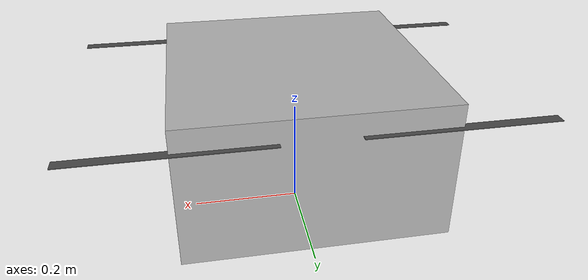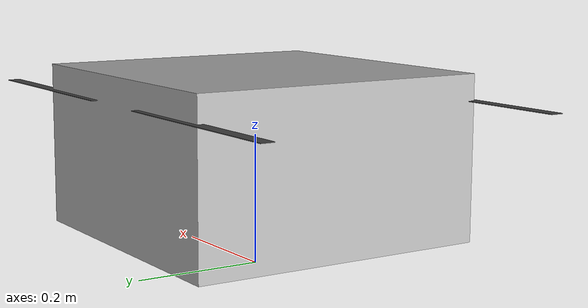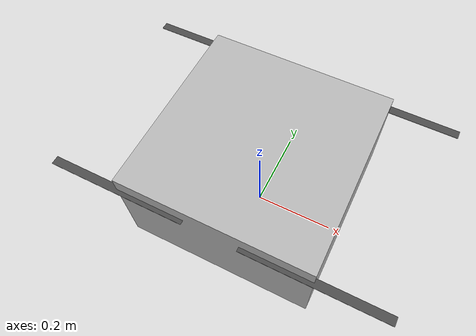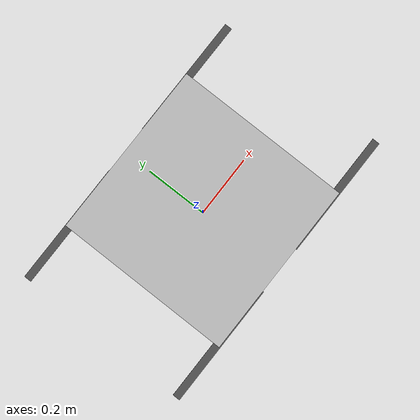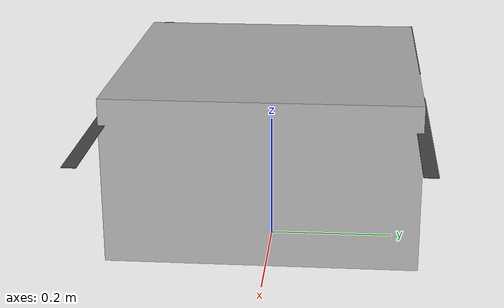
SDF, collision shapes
<?xml version='1.0'?>
<sdf version='1.5'>
  <model name='modified_m100_vision'>

    <include>
      <uri>model://modified_m100</uri>
    </include>

    <plugin name="vision_plugin" filename="libgazebo_vision_plugin.so">
        <robotNamespace></robotNamespace>
        <pubRate>30</pubRate>
        <randomWalk>1.0</randomWalk>
        <noiseDensity>5e-04</noiseDensity>
        <corellationTime>60.0</corellationTime>
    </plugin>
  </model>
</sdf>

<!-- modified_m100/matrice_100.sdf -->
<sdf version="1.5">

  <model name="modified_m100">

    <pose>0 0 0.2 0 0 0</pose>

    <self_collide>false</self_collide>

    <static>false</static>

    <link name="base_link">
      <pose frame=''>0 0 0 0 -0 0</pose>
      <inertial>
        <pose frame=''>0 0 0 0 -0 0</pose>
        <mass>2.0</mass>
        <inertia>
          <ixx>0.0216666666667</ixx>
          <ixy>0</ixy>
          <ixz>0</ixz>
          <iyy>0.0216666666667</iyy>
          <iyz>0</iyz>
          <izz>0.04</izz>
        </inertia>
      </inertial>

      <gravity>true</gravity>
      <self_collide>false</self_collide>
      <velocity_decay/>

      <visual name="base_link_visual">
        <geometry>
          <mesh>
            <scale>1 1 1</scale>
            <uri>model://matrice_100/meshes/Matrice_100.dae</uri>
          </mesh>
        </geometry>
      </visual>

      <collision name="base_link_collision">
      	<pose frame=''>0 0 -0.025 0 0 0</pose>
        <geometry>
          <box>
            <size>0.4596194077712559 0.4596194077712559 0.25</size>
          </box>
        </geometry>
        <surface>
          <contact>
            <ode>
              <min_depth>0.001</min_depth>
              <max_vel>0</max_vel>
            </ode>
          </contact>
          <friction>
            <ode/>
          </friction>
        </surface>
      </collision>

    </link>

    <link name='/imu_link'>
      <pose frame=''>0 0 0 0 -0 0</pose>
      <inertial>
        <pose frame=''>0 0 0 0 -0 0</pose>
        <mass>0.015</mass>
        <inertia>
          <ixx>1e-05</ixx>
          <ixy>0</ixy>
          <ixz>0</ixz>
          <iyy>1e-05</iyy>
          <iyz>0</iyz>
          <izz>1e-05</izz>
        </inertia>
      </inertial>
    </link>
    <joint name='/imu_joint' type='revolute'>
      <child>/imu_link</child>
      <parent>base_link</parent>
      <axis>
        <xyz>1 0 0</xyz>
        <limit>
          <lower>0</lower>
          <upper>0</upper>
          <effort>0</effort>
          <velocity>0</velocity>
        </limit>
        <dynamics>
          <spring_reference>0</spring_reference>
          <spring_stiffness>0</spring_stiffness>
        </dynamics>
        <use_parent_model_frame>1</use_parent_model_frame>
      </axis>
    </joint>

    <plugin name='rosbag' filename='libgazebo_multirotor_base_plugin.so'>
      <robotNamespace/>
      <linkName>base_link</linkName>
      <rotorVelocitySlowdownSim>10</rotorVelocitySlowdownSim>
    </plugin>

    <!--Rotor 0 -->
    <link name="rotor_0">

      <gravity>true</gravity>
      <self_collide>false</self_collide>
      <velocity_decay/>

      <pose>0.22980970388562796 -0.22980970388562794 0.06 0 0 0</pose>
      <inertial>
          <mass>0.019</mass>
          <inertia>
            <ixx>6.34916666667e-07</ixx>
            <iyy>4.31078333333e-05</iyy>
            <izz>4.37395833333e-05</izz>
          </inertia>
        </inertial>
      <visual name="rotor_0_visual">
        <pose>0 0 0 0 0 0</pose>
        <geometry>
          <mesh>
            <scale>1 1 1</scale>
            <uri>model://matrice_100/meshes/dji_13455_prop_ccw.dae</uri>
          </mesh>
        </geometry>
        <material>
          <script>
            <name>Gazebo/DarkGrey</name>
            <uri>file://media/materials/scripts/gazebo.material</uri>
          </script>
        </material>
      </visual>

      <collision name="rotor_0_collision">
        <pose>0 0 0 0 0 0 </pose>
        <geometry>
          <box>
            <size>0.33 0.02 0.001</size>
          </box>
        </geometry>
        <surface>
          <contact>
            <ode>
              <min_depth>0.001</min_depth>
              <max_vel>0</max_vel>
            </ode>
          </contact>
          <friction>
            <ode/>
          </friction>
        </surface>
      </collision>

    </link>

    <joint name="rotor_0_joint" type="revolute">
      <parent>base_link</parent>
      <child>rotor_0</child>
      <axis>
        <xyz>0 0 1</xyz>
	<limit>
          <lower>-1e+16</lower>
          <upper>1e+16</upper>
        </limit>
        <dynamics>
          <spring_reference>0</spring_reference>
          <spring_stiffness>0</spring_stiffness>
        </dynamics>
        <use_parent_model_frame>1</use_parent_model_frame>
      </axis>
    </joint>

    <plugin name='rotor_0_motor_model' filename='libgazebo_motor_model.so'>
      <robotNamespace/>
      <jointName>rotor_0_joint</jointName>
      <linkName>rotor_0</linkName>
      <turningDirection>ccw</turningDirection>
      <timeConstantUp>0.0125</timeConstantUp>
      <timeConstantDown>0.025</timeConstantDown>
      <maxRotVelocity>1100</maxRotVelocity>
      <motorConstant>8.54858e-06</motorConstant>
      <momentConstant>0.06</momentConstant>
      <commandSubTopic>/gazebo/command/motor_speed</commandSubTopic>
      <motorNumber>0</motorNumber>
      <rotorDragCoefficient>0.000806428</rotorDragCoefficient>
      <rollingMomentCoefficient>1e-06</rollingMomentCoefficient>
      <motorSpeedPubTopic>/motor_speed/0</motorSpeedPubTopic>
      <rotorVelocitySlowdownSim>10</rotorVelocitySlowdownSim>
    </plugin>

    <!--Rotor 1 -->
    <link name="rotor_1">

      <gravity>true</gravity>
      <self_collide>false</self_collide>
      <velocity_decay/>

      <pose>-0.22980970388562794 0.22980970388562796 0.06 0 0 0</pose>
      <inertial>
          <mass>0.019</mass>
          <inertia>
            <ixx>6.34916666667e-07</ixx>
            <iyy>4.31078333333e-05</iyy>
            <izz>4.37395833333e-05</izz>
          </inertia>
        </inertial>
      <visual name="rotor_1_visual">
        <pose>0 0 0 0 0 0</pose>
        <geometry>
          <mesh>
            <scale>1 1 1</scale>
            <uri>model://matrice_100/meshes/dji_13455_prop_ccw.dae</uri>
          </mesh>
        </geometry>
        <material>
          <script>
            <name>Gazebo/DarkGrey</name>
            <uri>file://media/materials/scripts/gazebo.material</uri>
          </script>
        </material>
      </visual>

      <collision name="rotor_1_collision">
        <pose>0 0 0 0 0 0 </pose>
        <geometry>
          <box>
            <size>0.33 0.02 0.001</size>
          </box>
        </geometry>
        <surface>
          <contact>
            <ode>
              <min_depth>0.001</min_depth>
              <max_vel>0</max_vel>
            </ode>
          </contact>
          <friction>
            <ode/>
          </friction>
        </surface>
      </collision>

    </link>

    <joint name="rotor_1_joint" type="revolute">
      <parent>base_link</parent>
      <child>rotor_1</child>
      <axis>
        <xyz>0 0 1</xyz>
	<limit>
          <lower>-1e+16</lower>
          <upper>1e+16</upper>
        </limit>
        <dynamics>
          <spring_reference>0</spring_reference>
          <spring_stiffness>0</spring_stiffness>
        </dynamics>
        <use_parent_model_frame>1</use_parent_model_frame>
      </axis>
    </joint>

    <plugin name='rotor_1_motor_model' filename='libgazebo_motor_model.so'>
      <robotNamespace/>
      <jointName>rotor_1_joint</jointName>
      <linkName>rotor_1</linkName>
      <turningDirection>ccw</turningDirection>
      <timeConstantUp>0.0125</timeConstantUp>
      <timeConstantDown>0.025</timeConstantDown>
      <maxRotVelocity>1100</maxRotVelocity>
      <motorConstant>8.54858e-06</motorConstant>
      <momentConstant>0.06</momentConstant>
      <commandSubTopic>/gazebo/command/motor_speed</commandSubTopic>
      <motorNumber>1</motorNumber>
      <rotorDragCoefficient>0.000806428</rotorDragCoefficient>
      <rollingMomentCoefficient>1e-06</rollingMomentCoefficient>
      <motorSpeedPubTopic>/motor_speed/1</motorSpeedPubTopic>
      <rotorVelocitySlowdownSim>10</rotorVelocitySlowdownSim>
    </plugin>

    <!--Rotor 2 -->
    <link name="rotor_2">

      <gravity>true</gravity>
      <self_collide>false</self_collide>
      <velocity_decay/>

      <pose>0.22980970388562796 0.22980970388562794 0.06 0 0 0</pose>
      <inertial>
          <mass>0.019</mass>
          <inertia>
            <ixx>6.34916666667e-07</ixx>
            <iyy>4.31078333333e-05</iyy>
            <izz>4.37395833333e-05</izz>
          </inertia>
        </inertial>
      <visual name="rotor_2_visual">
        <pose>0 0 0 0 0 0</pose>
        <geometry>
          <mesh>
            <scale>1 1 1</scale>
            <uri>model://matrice_100/meshes/dji_13455_prop_cw.dae</uri>
          </mesh>
        </geometry>
        <material>
          <script>
            <name>Gazebo/DarkGrey</name>
            <uri>file://media/materials/scripts/gazebo.material</uri>
          </script>
        </material>
      </visual>

      <collision name="rotor_2_collision">
        <pose>0 0 0 0 0 0 </pose>
        <geometry>
          <box>
            <size>0.33 0.02 0.001</size>
          </box>
        </geometry>
        <surface>
          <contact>
            <ode>
              <min_depth>0.001</min_depth>
              <max_vel>0</max_vel>
            </ode>
          </contact>
          <friction>
            <ode/>
          </friction>
        </surface>
      </collision>

    </link>

    <joint name="rotor_2_joint" type="revolute">
      <parent>base_link</parent>
      <child>rotor_2</child>
      <axis>
        <xyz>0 0 1</xyz>
	<limit>
          <lower>-1e+16</lower>
          <upper>1e+16</upper>
        </limit>
        <dynamics>
          <spring_reference>0</spring_reference>
          <spring_stiffness>0</spring_stiffness>
        </dynamics>
        <use_parent_model_frame>1</use_parent_model_frame>
      </axis>
    </joint>

    <plugin name='rotor_2_motor_model' filename='libgazebo_motor_model.so'>
      <robotNamespace/>
      <jointName>rotor_2_joint</jointName>
      <linkName>rotor_2</linkName>
      <turningDirection>cw</turningDirection>
      <timeConstantUp>0.0125</timeConstantUp>
      <timeConstantDown>0.025</timeConstantDown>
      <maxRotVelocity>1100</maxRotVelocity>
      <motorConstant>8.54858e-06</motorConstant>
      <momentConstant>0.06</momentConstant>
      <commandSubTopic>/gazebo/command/motor_speed</commandSubTopic>
      <motorNumber>2</motorNumber>
      <rotorDragCoefficient>0.000806428</rotorDragCoefficient>
      <rollingMomentCoefficient>1e-06</rollingMomentCoefficient>
      <motorSpeedPubTopic>/motor_speed/2</motorSpeedPubTopic>
      <rotorVelocitySlowdownSim>10</rotorVelocitySlowdownSim>
    </plugin>

    <!--Rotor 3 -->
    <link name="rotor_3">

      <gravity>true</gravity>
      <self_collide>false</self_collide>
      <velocity_decay/>

      <pose>-0.22980970388562794 -0.22980970388562796 0.06 0 0 0</pose>
      <inertial>
          <mass>0.019</mass>
          <inertia>
            <ixx>6.34916666667e-07</ixx>
            <iyy>4.31078333333e-05</iyy>
            <izz>4.37395833333e-05</izz>
          </inertia>
        </inertial>
      <visual name="rotor_3_visual">
        <pose>0 0 0 0 0 0</pose>
        <geometry>
          <mesh>
            <scale>1 1 1</scale>
            <uri>model://matrice_100/meshes/dji_13455_prop_cw.dae</uri>
          </mesh>
        </geometry>
        <material>
          <script>
            <name>Gazebo/DarkGrey</name>
            <uri>file://media/materials/scripts/gazebo.material</uri>
          </script>
        </material>
      </visual>

      <collision name="rotor_3_collision">
        <pose>0 0 0 0 0 0 </pose>
        <geometry>
          <box>
            <size>0.33 0.02 0.001</size>
          </box>
        </geometry>
        <surface>
          <contact>
            <ode>
              <min_depth>0.001</min_depth>
              <max_vel>0</max_vel>
            </ode>
          </contact>
          <friction>
            <ode/>
          </friction>
        </surface>
      </collision>

    </link>

    <joint name="rotor_3_joint" type="revolute">
      <parent>base_link</parent>
      <child>rotor_3</child>
      <axis>
        <xyz>0 0 1</xyz>
	<limit>
          <lower>-1e+16</lower>
          <upper>1e+16</upper>
        </limit>
        <dynamics>
          <spring_reference>0</spring_reference>
          <spring_stiffness>0</spring_stiffness>
        </dynamics>
        <use_parent_model_frame>1</use_parent_model_frame>
      </axis>
    </joint>

    <plugin name='rotor_3_motor_model' filename='libgazebo_motor_model.so'>
      <robotNamespace/>
      <jointName>rotor_3_joint</jointName>
      <linkName>rotor_3</linkName>
      <turningDirection>cw</turningDirection>
      <timeConstantUp>0.0125</timeConstantUp>
      <timeConstantDown>0.025</timeConstantDown>
      <maxRotVelocity>1100</maxRotVelocity>
      <motorConstant>8.54858e-06</motorConstant>
      <momentConstant>0.06</momentConstant>
      <commandSubTopic>/gazebo/command/motor_speed</commandSubTopic>
      <motorNumber>3</motorNumber>
      <rotorDragCoefficient>0.000806428</rotorDragCoefficient>
      <rollingMomentCoefficient>1e-06</rollingMomentCoefficient>
      <motorSpeedPubTopic>/motor_speed/3</motorSpeedPubTopic>
      <rotorVelocitySlowdownSim>10</rotorVelocitySlowdownSim>
    </plugin>

    <!--Pixhawk autopilot-->

    <!--3DR GPS and Magnetometer-->

    <!--This is what plugin should look like if using standard sensors-->

    <plugin name='gps_plugin' filename='libgazebo_gps_plugin.so'>
      <robotNamespace/>
      <gpsNoise>1</gpsNoise>
    </plugin>
    <plugin name='magnetometer_plugin' filename='libgazebo_magnetometer_plugin.so'>
      <robotNamespace/>
      <pubRate>20</pubRate>
      <noiseDensity>0.0004</noiseDensity>
      <randomWalk>6.4e-06</randomWalk>
      <biasCorrelationTime>600</biasCorrelationTime>
      <magTopic>/mag</magTopic>
    </plugin>
    <plugin name='barometer_plugin' filename='libgazebo_barometer_plugin.so'>
      <robotNamespace/>
      <pubRate>10</pubRate>
      <baroTopic>/baro</baroTopic>
    </plugin>

    <plugin name='mavlink_interface' filename='libgazebo_mavlink_interface.so'>
      <robotNamespace/>
      <imuSubTopic>/imu</imuSubTopic>
      <gpsSubTopic>/gps</gpsSubTopic>
      <magSubTopic>/mag</magSubTopic>
      <baroSubTopic>/baro</baroSubTopic>
      <mavlink_addr>INADDR_ANY</mavlink_addr>
      <mavlink_udp_port>14560</mavlink_udp_port>
      <mavlink_tcp_port>4560</mavlink_tcp_port>
      <serialEnabled>false</serialEnabled>
      <serialDevice>/dev/ttyACM0</serialDevice>
      <baudRate>921600</baudRate>
      <qgc_addr>INADDR_ANY</qgc_addr>
      <qgc_udp_port>14550</qgc_udp_port>
      <hil_mode>false</hil_mode>
      <hil_state_level>false</hil_state_level>
      <vehicle_is_tailsitter>0</vehicle_is_tailsitter>
      <send_vision_estimation>1</send_vision_estimation>
      <send_odometry>0</send_odometry>
      <opticalFlowSubTopic>/px4flow/link/opticalFlow</opticalFlowSubTopic>
      <lidarSubTopic>/sf10a/link/lidar</lidarSubTopic>
      <enable_lockstep>true</enable_lockstep>
      <use_tcp>true</use_tcp>
      <motorSpeedCommandPubTopic>/gazebo/command/motor_speed</motorSpeedCommandPubTopic>
<control_channels>
        <channel name='rotor1'>
          <input_index>0</input_index>
          <input_offset>0</input_offset>
          <input_scaling>1000</input_scaling>
          <zero_position_disarmed>0</zero_position_disarmed>
          <zero_position_armed>100</zero_position_armed>
          <joint_control_type>velocity</joint_control_type>
        </channel>
        <channel name='rotor2'>
          <input_index>1</input_index>
          <input_offset>0</input_offset>
          <input_scaling>1000</input_scaling>
          <zero_position_disarmed>0</zero_position_disarmed>
          <zero_position_armed>100</zero_position_armed>
          <joint_control_type>velocity</joint_control_type>
        </channel>
        <channel name='rotor3'>
          <input_index>2</input_index>
          <input_offset>0</input_offset>
          <input_scaling>1000</input_scaling>
          <zero_position_disarmed>0</zero_position_disarmed>
          <zero_position_armed>100</zero_position_armed>
          <joint_control_type>velocity</joint_control_type>
        </channel>
        <channel name='rotor4'>
          <input_index>3</input_index>
          <input_offset>0</input_offset>
          <input_scaling>1000</input_scaling>
          <zero_position_disarmed>0</zero_position_disarmed>
          <zero_position_armed>100</zero_position_armed>
          <joint_control_type>velocity</joint_control_type>
        </channel>
        <channel name='rotor5'>
          <input_index>4</input_index>
          <input_offset>1</input_offset>
          <input_scaling>324.6</input_scaling>
          <zero_position_disarmed>0</zero_position_disarmed>
          <zero_position_armed>0</zero_position_armed>
          <joint_control_type>velocity</joint_control_type>
          <joint_control_pid>
            <p>0.1</p>
            <i>0</i>
            <d>0</d>
            <iMax>0.0</iMax>
            <iMin>0.0</iMin>
            <cmdMax>2</cmdMax>
            <cmdMin>-2</cmdMin>
          </joint_control_pid>
          <joint_name>zephyr_delta_wing::propeller_joint</joint_name>
        </channel>
        <channel name='rotor6'>
          <input_index>5</input_index>
          <input_offset>0</input_offset>
          <input_scaling>0.524</input_scaling>
          <zero_position_disarmed>0</zero_position_disarmed>
          <zero_position_armed>0</zero_position_armed>
          <joint_control_type>position</joint_control_type>
          <joint_name>zephyr_delta_wing::flap_left_joint</joint_name>
          <joint_control_pid>
            <p>10.0</p>
            <i>0</i>
            <d>0</d>
            <iMax>0</iMax>
            <iMin>0</iMin>
            <cmdMax>20</cmdMax>
            <cmdMin>-20</cmdMin>
          </joint_control_pid>
        </channel>
        <channel name='rotor7'>
          <input_index>6</input_index>
          <input_offset>0</input_offset>
          <input_scaling>0.524</input_scaling>
          <zero_position_disarmed>0</zero_position_disarmed>
          <zero_position_armed>0</zero_position_armed>
          <joint_control_type>position</joint_control_type>
          <joint_name>zephyr_delta_wing::flap_right_joint</joint_name>
          <joint_control_pid>
            <p>10.0</p>
            <i>0</i>
            <d>0</d>
            <iMax>0</iMax>
            <iMin>0</iMin>
            <cmdMax>20</cmdMax>
            <cmdMin>-20</cmdMin>
          </joint_control_pid>
        </channel>
        <channel name='rotor8'>
          <input_index>7</input_index>
          <input_offset>0</input_offset>
          <input_scaling>0.524</input_scaling>
          <zero_position_disarmed>0</zero_position_disarmed>
          <zero_position_armed>0</zero_position_armed>
          <joint_control_type>position</joint_control_type>
        </channel>
      </control_channels>
    </plugin>

    <plugin name='gazebo_imu_plugin' filename='libgazebo_imu_plugin.so'>
      <robotNamespace/>
      <linkName>/imu_link</linkName>
      <imuTopic>/imu</imuTopic>
      <gyroscopeNoiseDensity>0.0003394</gyroscopeNoiseDensity>
      <gyroscopeRandomWalk>3.8785e-05</gyroscopeRandomWalk>
      <gyroscopeBiasCorrelationTime>1000.0</gyroscopeBiasCorrelationTime>
      <gyroscopeTurnOnBiasSigma>0.0087</gyroscopeTurnOnBiasSigma>
      <accelerometerNoiseDensity>0.004</accelerometerNoiseDensity>
      <accelerometerRandomWalk>0.006</accelerometerRandomWalk>
      <accelerometerBiasCorrelationTime>300.0</accelerometerBiasCorrelationTime>
      <accelerometerTurnOnBiasSigma>0.196</accelerometerTurnOnBiasSigma>
    </plugin>

  </model>

</sdf>
